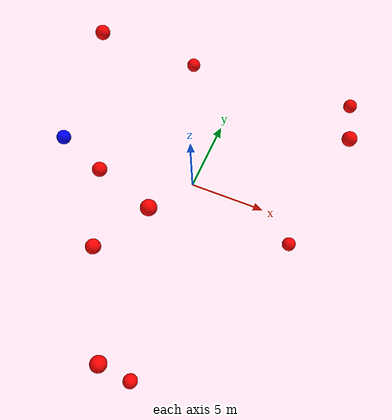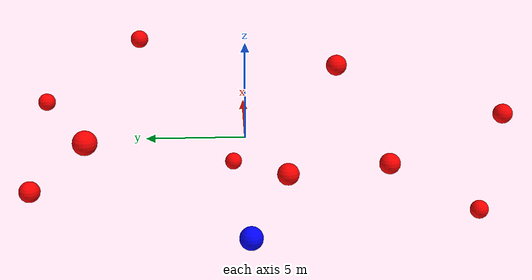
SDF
<?xml version="1.0" ?>
<sdf version="1.8">
    <world name="3d_world">
        <physics name="1ms" type="ode">
            <max_step_size>0.001</max_step_size>
            <real_time_factor>1.0</real_time_factor>
            <real_time_update_rate>1000.0</real_time_update_rate>
        </physics>
        <gravity>0 0 0</gravity>

        <plugin
            filename="gz-sim-physics-system"
            name="gz::sim::v8::systems::Physics">
        </plugin>
        <plugin
            filename="libignition-gazebo-user-commands-system.so"
            name="ignition::gazebo::systems::UserCommands">
        </plugin>
        <plugin
            filename="gz-sim-scene-broadcaster-system"
            name="gz::sim::systems::SceneBroadcaster">
        </plugin>
        <plugin
            filename="gz-sim-sensors-system"
            name="gz::sim::systems::Sensors">
            <render_engine>ogre2</render_engine>
        </plugin>

        <light type="directional" name="sun">
            <cast_shadows>true</cast_shadows>
            <pose>0 0 10 0 0 0</pose>
            <diffuse>0.8 0.8 0.8 1</diffuse>
            <specular>0.2 0.2 0.2 1</specular>
            <attenuation>
                <range>1000</range>
                <constant>0.9</constant>
                <linear>0.01</linear>
                <quadratic>0.001</quadratic>
            </attenuation>
            <direction>-0.5 0.1 -0.9</direction>
        </light>

        <!-- AGENTE -->
        <model name='agente' canonical_link='chassis'>
            <pose relative_to='world'>-10.0 0 0.0 0 0 0</pose>
            <link name='chassis'>
                <pose relative_to='__model__'>0.0 0 0.0 0 0 0</pose>
                <inertial>
                    <mass>1.14395</mass>
                    <inertia>
                        <ixx>0.095329</ixx>
                        <ixy>0</ixy>
                        <ixz>0</ixz>
                        <iyy>0.381317</iyy>
                        <iyz>0</iyz>
                        <izz>0.476646</izz>
                    </inertia>
                </inertial>
                <visual name='visual'>
                    <geometry>
                        <sphere>
                            <radius>0.5</radius>
                        </sphere>
                    </geometry>
                    <material>
                        <ambient>0.0 0.0 1.0 1</ambient>
                        <diffuse>0.0 0.0 1.0 1</diffuse>
                        <specular>0.0 0.0 1.0 1</specular>
                    </material>
                </visual>
                <collision name='collision'>
                    <geometry>
                        <sphere>
                            <radius>0.5</radius>
                        </sphere>
                    </geometry>
                </collision>
                <enable_gravity>false</enable_gravity>
            </link>

            <link name='lidar_link'>
                <pose relative_to='chassis'>0.0 0 0.1 0 0 0</pose>
                <inertial>
                    <mass>0.1</mass>
                    <inertia>
                        <ixx>0.000166667</ixx>
                        <iyy>0.000166667</iyy>
                        <izz>0.000166667</izz>
                    </inertia>
                </inertial>
                <collision name='collision'>
                    <geometry>
                        <cylinder>
                            <radius>0.05</radius>
                            <length>0.1</length>
                        </cylinder>
                    </geometry>
                </collision>
                <visual name='visual'>
                    <geometry>
                        <cylinder>
                            <radius>0.05</radius>
                            <length>0.1</length>
                        </cylinder>
                    </geometry>
                    <material>
                        <ambient>0.0 1.0 0.0 1</ambient>
                        <diffuse>0.0 1.0 0.0 1</diffuse>
                        <specular>0.0 1.0 0.0 1</specular>
                    </material>
                </visual>
                <sensor name="lidar" type="gpu_lidar">
                    <topic>scan</topic>
                    <update_rate>10</update_rate>
                    <lidar>
                        <scan>
                            <horizontal>
                                <samples>5000</samples>
                                <resolution>1</resolution>
                                <min_angle>-3.14159</min_angle>
                                <max_angle>3.14159</max_angle>
                            </horizontal>
                        </scan>
                        <range>
                            <min>0.1</min>
                            <max>10.0</max>
                            <resolution>0.01</resolution>
                        </range>
                    </lidar>
                    <visualize>true</visualize>
                    <always_on>true</always_on>
                    <update_rate>10</update_rate>
                    <pose_frame>lidar</pose_frame>
                </sensor>
                <enable_gravity>false</enable_gravity>
            </link>

            <joint name="lidar_joint" type="fixed">
                <parent>chassis</parent>
                <child>lidar_link</child>
            </joint>

            <plugin
                filename="ignition-gazebo-joint-state-publisher-system"
                name="ignition::gazebo::systems::JointStatePublisher">
            </plugin>
            <plugin
                filename="ignition-gazebo-odometry-publisher-system"
                name="ignition::gazebo::systems::OdometryPublisher">
                <dimensions>3</dimensions>
            </plugin>
            <plugin
                filename="ignition-gazebo-velocity-control-system"
                name="ignition::gazebo::systems::VelocityControl">
                <initial_linear>0.0 0 0</initial_linear>
                <initial_angular>0 0 0.0</initial_angular>
            </plugin>
            <plugin
                filename="libignition-gazebo-pose-publisher-system.so"
                name="ignition::gazebo::systems::PosePublisher">
                <topic>/agente/pose</topic>
                <frame_id>agente</frame_id>
                <update_rate>30</update_rate>
            </plugin>
        </model>

        <!-- OBSTACLE 1 -->
        <model name='obstacle_1' canonical_link='obstacle'>
            <static>false</static>
            <pose relative_to='world'>-0.73 -4.41 4.09 0 0 0</pose>
            <link name='obstacle'>
                <pose relative_to='__model__'>0.0 0 0.0 0 0 0</pose>
                <visual name='visual'>
                    <geometry>
                        <sphere>
                            <radius>0.50</radius>
                        </sphere>
                    </geometry>
                    <material>
                        <ambient>1.0 0.0 0.0 1</ambient>
                        <diffuse>1.0 0.0 0.0 1</diffuse>
                        <specular>1.0 0.0 0.0 1</specular>
                    </material>
                </visual>
                <collision name='collision'>
                    <geometry>
                        <sphere>
                            <radius>0.50</radius>
                        </sphere>
                    </geometry>
                </collision>
                <enable_gravity>false</enable_gravity>
            </link>

            <plugin
                filename="ignition-gazebo-velocity-control-system"
                name="ignition::gazebo::systems::VelocityControl">
                <initial_linear>-1.03 1.26 -1.17</initial_linear>
                <initial_angular>0 0 0</initial_angular>
            </plugin>

            <plugin
                filename="ignition-gazebo-odometry-publisher-system"
                name="ignition::gazebo::systems::OdometryPublisher">
                <dimensions>3</dimensions>
            </plugin>
        </model>

        <!-- OBSTACLE 2 -->
        <model name='obstacle_2' canonical_link='obstacle'>
            <static>false</static>
            <pose relative_to='world'>-4.37 10.10 -0.62 0 0 0</pose>
            <link name='obstacle'>
                <pose relative_to='__model__'>0.0 0 0.0 0 0 0</pose>
                <visual name='visual'>
                    <geometry>
                        <sphere>
                            <radius>0.50</radius>
                        </sphere>
                    </geometry>
                    <material>
                        <ambient>1.0 0.0 0.0 1</ambient>
                        <diffuse>1.0 0.0 0.0 1</diffuse>
                        <specular>1.0 0.0 0.0 1</specular>
                    </material>
                </visual>
                <collision name='collision'>
                    <geometry>
                        <sphere>
                            <radius>0.50</radius>
                        </sphere>
                    </geometry>
                </collision>
                <enable_gravity>false</enable_gravity>
            </link>

            <plugin
                filename="ignition-gazebo-velocity-control-system"
                name="ignition::gazebo::systems::VelocityControl">
                <initial_linear>0.43 -1.95 0.12</initial_linear>
                <initial_angular>0 0 0</initial_angular>
            </plugin>

            <plugin
                filename="ignition-gazebo-odometry-publisher-system"
                name="ignition::gazebo::systems::OdometryPublisher">
                <dimensions>3</dimensions>
            </plugin>
        </model>

        <!-- OBSTACLE 3 -->
        <model name='obstacle_3' canonical_link='obstacle'>
            <static>false</static>
            <pose relative_to='world'>-3.96 -6.69 0.33 0 0 0</pose>
            <link name='obstacle'>
                <pose relative_to='__model__'>0.0 0 0.0 0 0 0</pose>
                <visual name='visual'>
                    <geometry>
                        <sphere>
                            <radius>0.50</radius>
                        </sphere>
                    </geometry>
                    <material>
                        <ambient>1.0 0.0 0.0 1</ambient>
                        <diffuse>1.0 0.0 0.0 1</diffuse>
                        <specular>1.0 0.0 0.0 1</specular>
                    </material>
                </visual>
                <collision name='collision'>
                    <geometry>
                        <sphere>
                            <radius>0.50</radius>
                        </sphere>
                    </geometry>
                </collision>
                <enable_gravity>false</enable_gravity>
            </link>

            <plugin
                filename="ignition-gazebo-velocity-control-system"
                name="ignition::gazebo::systems::VelocityControl">
                <initial_linear>-0.28 1.98 -0.10</initial_linear>
                <initial_angular>0 0 0</initial_angular>
            </plugin>

            <plugin
                filename="ignition-gazebo-odometry-publisher-system"
                name="ignition::gazebo::systems::OdometryPublisher">
                <dimensions>3</dimensions>
            </plugin>
        </model>

        <!-- OBSTACLE 4 -->
        <model name='obstacle_4' canonical_link='obstacle'>
            <static>false</static>
            <pose relative_to='world'>7.99 11.41 -1.16 0 0 0</pose>
            <link name='obstacle'>
                <pose relative_to='__model__'>0.0 0 0.0 0 0 0</pose>
                <visual name='visual'>
                    <geometry>
                        <sphere>
                            <radius>0.50</radius>
                        </sphere>
                    </geometry>
                    <material>
                        <ambient>1.0 0.0 0.0 1</ambient>
                        <diffuse>1.0 0.0 0.0 1</diffuse>
                        <specular>1.0 0.0 0.0 1</specular>
                    </material>
                </visual>
                <collision name='collision'>
                    <geometry>
                        <sphere>
                            <radius>0.50</radius>
                        </sphere>
                    </geometry>
                </collision>
                <enable_gravity>false</enable_gravity>
            </link>

            <plugin
                filename="ignition-gazebo-velocity-control-system"
                name="ignition::gazebo::systems::VelocityControl">
                <initial_linear>-1.32 -1.50 0.15</initial_linear>
                <initial_angular>0 0 0</initial_angular>
            </plugin>

            <plugin
                filename="ignition-gazebo-odometry-publisher-system"
                name="ignition::gazebo::systems::OdometryPublisher">
                <dimensions>3</dimensions>
            </plugin>
        </model>

        <!-- OBSTACLE 5 -->
        <model name='obstacle_5' canonical_link='obstacle'>
            <static>false</static>
            <pose relative_to='world'>-9.50 6.54 4.17 0 0 0</pose>
            <link name='obstacle'>
                <pose relative_to='__model__'>0.0 0 0.0 0 0 0</pose>
                <visual name='visual'>
                    <geometry>
                        <sphere>
                            <radius>0.50</radius>
                        </sphere>
                    </geometry>
                    <material>
                        <ambient>1.0 0.0 0.0 1</ambient>
                        <diffuse>1.0 0.0 0.0 1</diffuse>
                        <specular>1.0 0.0 0.0 1</specular>
                    </material>
                </visual>
                <collision name='collision'>
                    <geometry>
                        <sphere>
                            <radius>0.50</radius>
                        </sphere>
                    </geometry>
                </collision>
                <enable_gravity>false</enable_gravity>
            </link>

            <plugin
                filename="ignition-gazebo-velocity-control-system"
                name="ignition::gazebo::systems::VelocityControl">
                <initial_linear>1.27 -1.30 -0.83</initial_linear>
                <initial_angular>0 0 0</initial_angular>
            </plugin>

            <plugin
                filename="ignition-gazebo-odometry-publisher-system"
                name="ignition::gazebo::systems::OdometryPublisher">
                <dimensions>3</dimensions>
            </plugin>
        </model>

        <!-- OBSTACLE 6 -->
        <model name='obstacle_6' canonical_link='obstacle'>
            <static>false</static>
            <pose relative_to='world'>8.69 5.89 2.41 0 0 0</pose>
            <link name='obstacle'>
                <pose relative_to='__model__'>0.0 0 0.0 0 0 0</pose>
                <visual name='visual'>
                    <geometry>
                        <sphere>
                            <radius>0.50</radius>
                        </sphere>
                    </geometry>
                    <material>
                        <ambient>1.0 0.0 0.0 1</ambient>
                        <diffuse>1.0 0.0 0.0 1</diffuse>
                        <specular>1.0 0.0 0.0 1</specular>
                    </material>
                </visual>
                <collision name='collision'>
                    <geometry>
                        <sphere>
                            <radius>0.50</radius>
                        </sphere>
                    </geometry>
                </collision>
                <enable_gravity>false</enable_gravity>
            </link>

            <plugin
                filename="ignition-gazebo-velocity-control-system"
                name="ignition::gazebo::systems::VelocityControl">
                <initial_linear>-1.69 -1.00 -0.41</initial_linear>
                <initial_angular>0 0 0</initial_angular>
            </plugin>

            <plugin
                filename="ignition-gazebo-odometry-publisher-system"
                name="ignition::gazebo::systems::OdometryPublisher">
                <dimensions>3</dimensions>
            </plugin>
        </model>

        <!-- OBSTACLE 7 -->
        <model name='obstacle_7' canonical_link='obstacle'>
            <static>false</static>
            <pose relative_to='world'>7.31 0.54 -4.86 0 0 0</pose>
            <link name='obstacle'>
                <pose relative_to='__model__'>0.0 0 0.0 0 0 0</pose>
                <visual name='visual'>
                    <geometry>
                        <sphere>
                            <radius>0.50</radius>
                        </sphere>
                    </geometry>
                    <material>
                        <ambient>1.0 0.0 0.0 1</ambient>
                        <diffuse>1.0 0.0 0.0 1</diffuse>
                        <specular>1.0 0.0 0.0 1</specular>
                    </material>
                </visual>
                <collision name='collision'>
                    <geometry>
                        <sphere>
                            <radius>0.50</radius>
                        </sphere>
                    </geometry>
                </collision>
                <enable_gravity>false</enable_gravity>
            </link>

            <plugin
                filename="ignition-gazebo-velocity-control-system"
                name="ignition::gazebo::systems::VelocityControl">
                <initial_linear>-1.79 -0.10 0.89</initial_linear>
                <initial_angular>0 0 0</initial_angular>
            </plugin>

            <plugin
                filename="ignition-gazebo-odometry-publisher-system"
                name="ignition::gazebo::systems::OdometryPublisher">
                <dimensions>3</dimensions>
            </plugin>
        </model>

        <!-- OBSTACLE 8 -->
        <model name='obstacle_8' canonical_link='obstacle'>
            <static>false</static>
            <pose relative_to='world'>-0.01 -13.05 1.10 0 0 0</pose>
            <link name='obstacle'>
                <pose relative_to='__model__'>0.0 0 0.0 0 0 0</pose>
                <visual name='visual'>
                    <geometry>
                        <sphere>
                            <radius>0.50</radius>
                        </sphere>
                    </geometry>
                    <material>
                        <ambient>1.0 0.0 0.0 1</ambient>
                        <diffuse>1.0 0.0 0.0 1</diffuse>
                        <specular>1.0 0.0 0.0 1</specular>
                    </material>
                </visual>
                <collision name='collision'>
                    <geometry>
                        <sphere>
                            <radius>0.50</radius>
                        </sphere>
                    </geometry>
                </collision>
                <enable_gravity>false</enable_gravity>
            </link>

            <plugin
                filename="ignition-gazebo-velocity-control-system"
                name="ignition::gazebo::systems::VelocityControl">
                <initial_linear>0.92 1.77 -0.15</initial_linear>
                <initial_angular>0 0 0</initial_angular>
            </plugin>

            <plugin
                filename="ignition-gazebo-odometry-publisher-system"
                name="ignition::gazebo::systems::OdometryPublisher">
                <dimensions>3</dimensions>
            </plugin>
        </model>

        <!-- OBSTACLE 9 -->
        <model name='obstacle_9' canonical_link='obstacle'>
            <static>false</static>
            <pose relative_to='world'>0.88 -12.66 -4.89 0 0 0</pose>
            <link name='obstacle'>
                <pose relative_to='__model__'>0.0 0 0.0 0 0 0</pose>
                <visual name='visual'>
                    <geometry>
                        <sphere>
                            <radius>0.50</radius>
                        </sphere>
                    </geometry>
                    <material>
                        <ambient>1.0 0.0 0.0 1</ambient>
                        <diffuse>1.0 0.0 0.0 1</diffuse>
                        <specular>1.0 0.0 0.0 1</specular>
                    </material>
                </visual>
                <collision name='collision'>
                    <geometry>
                        <sphere>
                            <radius>0.50</radius>
                        </sphere>
                    </geometry>
                </collision>
                <enable_gravity>false</enable_gravity>
            </link>

            <plugin
                filename="ignition-gazebo-velocity-control-system"
                name="ignition::gazebo::systems::VelocityControl">
                <initial_linear>0.32 1.84 0.71</initial_linear>
                <initial_angular>0 0 0</initial_angular>
            </plugin>

            <plugin
                filename="ignition-gazebo-odometry-publisher-system"
                name="ignition::gazebo::systems::OdometryPublisher">
                <dimensions>3</dimensions>
            </plugin>
        </model>

        <!-- OBSTACLE 10 -->
        <model name='obstacle_10' canonical_link='obstacle'>
            <static>false</static>
            <pose relative_to='world'>-6.00 -1.77 0.89 0 0 0</pose>
            <link name='obstacle'>
                <pose relative_to='__model__'>0.0 0 0.0 0 0 0</pose>
                <visual name='visual'>
                    <geometry>
                        <sphere>
                            <radius>0.50</radius>
                        </sphere>
                    </geometry>
                    <material>
                        <ambient>1.0 0.0 0.0 1</ambient>
                        <diffuse>1.0 0.0 0.0 1</diffuse>
                        <specular>1.0 0.0 0.0 1</specular>
                    </material>
                </visual>
                <collision name='collision'>
                    <geometry>
                        <sphere>
                            <radius>0.50</radius>
                        </sphere>
                    </geometry>
                </collision>
                <enable_gravity>false</enable_gravity>
            </link>

            <plugin
                filename="ignition-gazebo-velocity-control-system"
                name="ignition::gazebo::systems::VelocityControl">
                <initial_linear>1.54 0.43 -0.21</initial_linear>
                <initial_angular>0 0 0</initial_angular>
            </plugin>

            <plugin
                filename="ignition-gazebo-odometry-publisher-system"
                name="ignition::gazebo::systems::OdometryPublisher">
                <dimensions>3</dimensions>
            </plugin>
        </model>

    </world>
</sdf>
